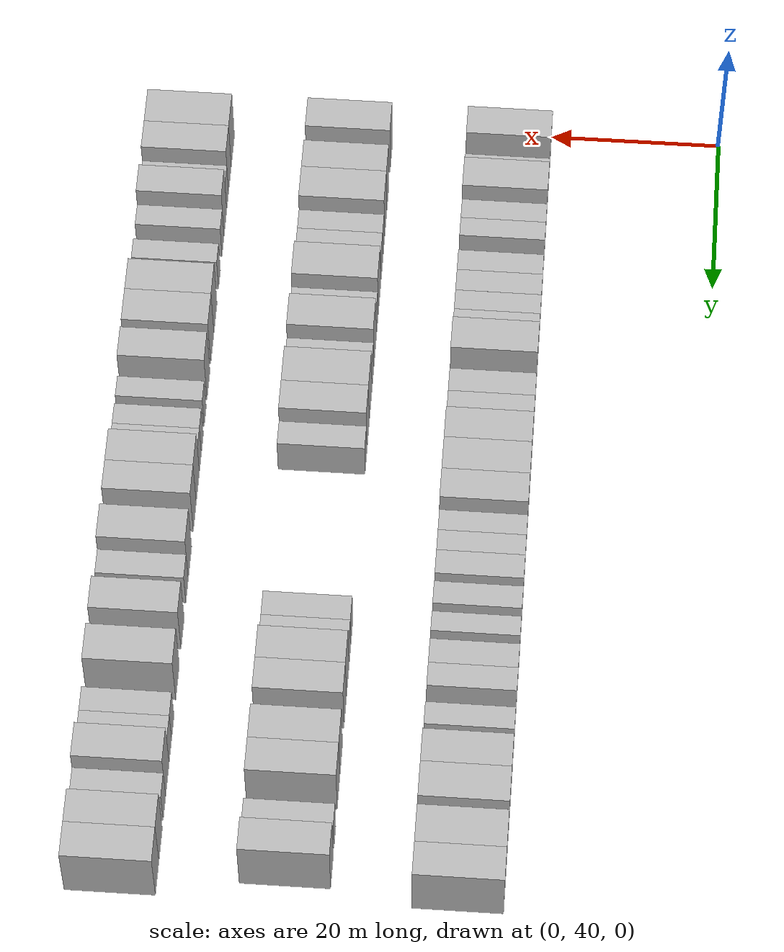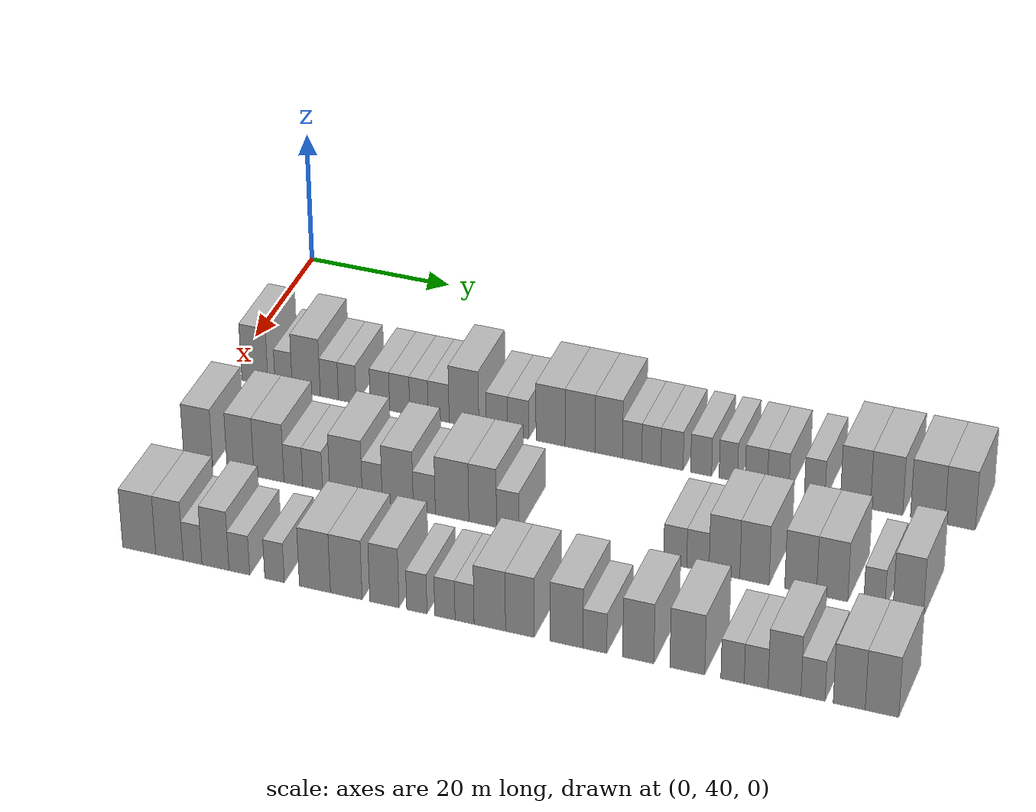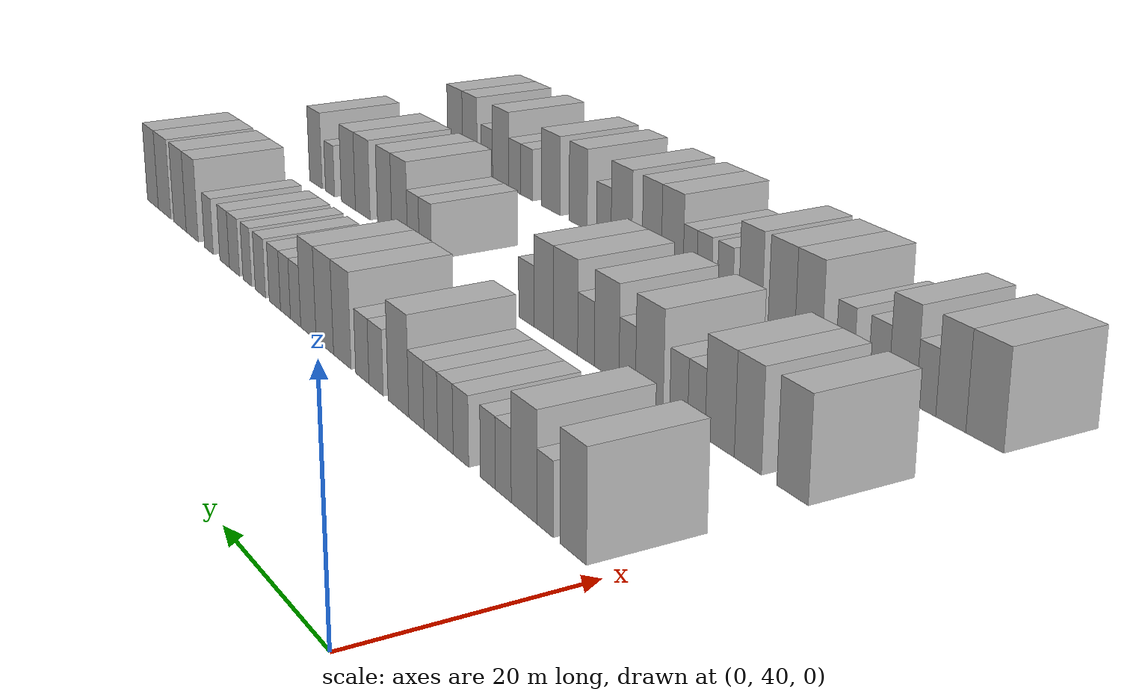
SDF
<sdf version="1.6">
 <world name="default">
  <model name="building_66">
   <static>1</static>
   <pose>25.0000 44.0719 0 0.000000 0.000000 0.000000</pose>
   <link name="link">
    <pose>0 0 4.50 0 0 0</pose>
    <collision name="collision"><geometry><box><size>10.0000 3.7396 9.0000</size></box></geometry></collision>
    <visual name="visual">
     <cast_shadows>0</cast_shadows>
     <geometry><box><size>10.0000 3.7396 9.0000</size></box></geometry>
     <material>
      <script>
       <uri>model://HANNAS_wall/materials/scripts</uri>
       <uri>model://HANNAS_wall/materials/textures</uri>
       <name>vrc/HANNAS_wall</name>
      </script>
     </material>
    </visual>
   </link>
  </model>
  <model name="building_67">
   <static>1</static>
   <pose>25.0000 48.1564 0 0.000000 0.000000 0.000000</pose>
   <link name="link">
    <pose>0 0 3.00 0 0 0</pose>
    <collision name="collision"><geometry><box><size>10.0000 2.4293 6.0000</size></box></geometry></collision>
    <visual name="visual">
     <cast_shadows>0</cast_shadows>
     <geometry><box><size>10.0000 2.4293 6.0000</size></box></geometry>
     <material>
      <script>
       <uri>model://HANNAS_wall/materials/scripts</uri>
       <uri>model://HANNAS_wall/materials/textures</uri>
       <name>vrc/HANNAS_wall</name>
      </script>
     </material>
    </visual>
   </link>
  </model>
  <model name="building_68">
   <static>1</static>
   <pose>25.0000 51.3450 0 0.000000 0.000000 0.000000</pose>
   <link name="link">
    <pose>0 0 4.50 0 0 0</pose>
    <collision name="collision"><geometry><box><size>10.0000 3.9480 9.0000</size></box></geometry></collision>
    <visual name="visual">
     <cast_shadows>0</cast_shadows>
     <geometry><box><size>10.0000 3.9480 9.0000</size></box></geometry>
     <material>
      <script>
       <uri>model://HANNAS_wall/materials/scripts</uri>
       <uri>model://HANNAS_wall/materials/textures</uri>
       <name>vrc/HANNAS_wall</name>
      </script>
     </material>
    </visual>
   </link>
  </model>
  <model name="building_69">
   <static>1</static>
   <pose>25.0000 54.5966 0 0.000000 0.000000 0.000000</pose>
   <link name="link">
    <pose>0 0 3.00 0 0 0</pose>
    <collision name="collision"><geometry><box><size>10.0000 2.5550 6.0000</size></box></geometry></collision>
    <visual name="visual">
     <cast_shadows>0</cast_shadows>
     <geometry><box><size>10.0000 2.5550 6.0000</size></box></geometry>
     <material>
      <script>
       <uri>model://HANNAS_wall/materials/scripts</uri>
       <uri>model://HANNAS_wall/materials/textures</uri>
       <name>vrc/HANNAS_wall</name>
      </script>
     </material>
    </visual>
   </link>
  </model>
  <model name="building_70">
   <static>1</static>
   <pose>25.0000 57.1111 0 0.000000 0.000000 0.000000</pose>
   <link name="link">
    <pose>0 0 3.00 0 0 0</pose>
    <collision name="collision"><geometry><box><size>10.0000 2.4741 6.0000</size></box></geometry></collision>
    <visual name="visual">
     <cast_shadows>0</cast_shadows>
     <geometry><box><size>10.0000 2.4741 6.0000</size></box></geometry>
     <material>
      <script>
       <uri>model://HANNAS_wall/materials/scripts</uri>
       <uri>model://HANNAS_wall/materials/textures</uri>
       <name>vrc/HANNAS_wall</name>
      </script>
     </material>
    </visual>
   </link>
  </model>
  <model name="building_71">
   <static>1</static>
   <pose>25.0000 61.6997 0 0.000000 0.000000 0.000000</pose>
   <link name="link">
    <pose>0 0 3.00 0 0 0</pose>
    <collision name="collision"><geometry><box><size>10.0000 2.7030 6.0000</size></box></geometry></collision>
    <visual name="visual">
     <cast_shadows>0</cast_shadows>
     <geometry><box><size>10.0000 2.7030 6.0000</size></box></geometry>
     <material>
      <script>
       <uri>model://HANNAS_wall/materials/scripts</uri>
       <uri>model://HANNAS_wall/materials/textures</uri>
       <name>vrc/HANNAS_wall</name>
      </script>
     </material>
    </visual>
   </link>
  </model>
  <model name="building_72">
   <static>1</static>
   <pose>25.0000 64.4498 0 0.000000 0.000000 0.000000</pose>
   <link name="link">
    <pose>0 0 3.00 0 0 0</pose>
    <collision name="collision"><geometry><box><size>10.0000 2.7973 6.0000</size></box></geometry></collision>
    <visual name="visual">
     <cast_shadows>0</cast_shadows>
     <geometry><box><size>10.0000 2.7973 6.0000</size></box></geometry>
     <material>
      <script>
       <uri>model://HANNAS_wall/materials/scripts</uri>
       <uri>model://HANNAS_wall/materials/textures</uri>
       <name>vrc/HANNAS_wall</name>
      </script>
     </material>
    </visual>
   </link>
  </model>
  <model name="building_73">
   <static>1</static>
   <pose>25.0000 67.1315 0 0.000000 0.000000 0.000000</pose>
   <link name="link">
    <pose>0 0 3.00 0 0 0</pose>
    <collision name="collision"><geometry><box><size>10.0000 2.5660 6.0000</size></box></geometry></collision>
    <visual name="visual">
     <cast_shadows>0</cast_shadows>
     <geometry><box><size>10.0000 2.5660 6.0000</size></box></geometry>
     <material>
      <script>
       <uri>model://HANNAS_wall/materials/scripts</uri>
       <uri>model://HANNAS_wall/materials/textures</uri>
       <name>vrc/HANNAS_wall</name>
      </script>
     </material>
    </visual>
   </link>
  </model>
  <model name="building_74">
   <static>1</static>
   <pose>25.0000 69.8629 0 0.000000 0.000000 0.000000</pose>
   <link name="link">
    <pose>0 0 3.00 0 0 0</pose>
    <collision name="collision"><geometry><box><size>10.0000 2.8969 6.0000</size></box></geometry></collision>
    <visual name="visual">
     <cast_shadows>0</cast_shadows>
     <geometry><box><size>10.0000 2.8969 6.0000</size></box></geometry>
     <material>
      <script>
       <uri>model://HANNAS_wall/materials/scripts</uri>
       <uri>model://HANNAS_wall/materials/textures</uri>
       <name>vrc/HANNAS_wall</name>
      </script>
     </material>
    </visual>
   </link>
  </model>
  <model name="building_75">
   <static>1</static>
   <pose>25.0000 73.3644 0 0.000000 0.000000 0.000000</pose>
   <link name="link">
    <pose>0 0 4.50 0 0 0</pose>
    <collision name="collision"><geometry><box><size>10.0000 4.1061 9.0000</size></box></geometry></collision>
    <visual name="visual">
     <cast_shadows>0</cast_shadows>
     <geometry><box><size>10.0000 4.1061 9.0000</size></box></geometry>
     <material>
      <script>
       <uri>model://HANNAS_wall/materials/scripts</uri>
       <uri>model://HANNAS_wall/materials/textures</uri>
       <name>vrc/HANNAS_wall</name>
      </script>
     </material>
    </visual>
   </link>
  </model>
  <model name="building_76">
   <static>1</static>
   <pose>25.0000 77.9017 0 0.000000 0.000000 0.000000</pose>
   <link name="link">
    <pose>0 0 3.00 0 0 0</pose>
    <collision name="collision"><geometry><box><size>10.0000 2.9686 6.0000</size></box></geometry></collision>
    <visual name="visual">
     <cast_shadows>0</cast_shadows>
     <geometry><box><size>10.0000 2.9686 6.0000</size></box></geometry>
     <material>
      <script>
       <uri>model://HANNAS_wall/materials/scripts</uri>
       <uri>model://HANNAS_wall/materials/textures</uri>
       <name>vrc/HANNAS_wall</name>
      </script>
     </material>
    </visual>
   </link>
  </model>
  <model name="building_77">
   <static>1</static>
   <pose>25.0000 80.8199 0 0.000000 0.000000 0.000000</pose>
   <link name="link">
    <pose>0 0 3.00 0 0 0</pose>
    <collision name="collision"><geometry><box><size>10.0000 2.8679 6.0000</size></box></geometry></collision>
    <visual name="visual">
     <cast_shadows>0</cast_shadows>
     <geometry><box><size>10.0000 2.8679 6.0000</size></box></geometry>
     <material>
      <script>
       <uri>model://HANNAS_wall/materials/scripts</uri>
       <uri>model://HANNAS_wall/materials/textures</uri>
       <name>vrc/HANNAS_wall</name>
      </script>
     </material>
    </visual>
   </link>
  </model>
  <model name="building_78">
   <static>1</static>
   <pose>25.0000 85.2276 0 0.000000 0.000000 0.000000</pose>
   <link name="link">
    <pose>0 0 4.50 0 0 0</pose>
    <collision name="collision"><geometry><box><size>10.0000 3.9474 9.0000</size></box></geometry></collision>
    <visual name="visual">
     <cast_shadows>0</cast_shadows>
     <geometry><box><size>10.0000 3.9474 9.0000</size></box></geometry>
     <material>
      <script>
       <uri>model://HANNAS_wall/materials/scripts</uri>
       <uri>model://HANNAS_wall/materials/textures</uri>
       <name>vrc/HANNAS_wall</name>
      </script>
     </material>
    </visual>
   </link>
  </model>
  <model name="building_79">
   <static>1</static>
   <pose>25.0000 89.2398 0 0.000000 0.000000 0.000000</pose>
   <link name="link">
    <pose>0 0 4.50 0 0 0</pose>
    <collision name="collision"><geometry><box><size>10.0000 4.0771 9.0000</size></box></geometry></collision>
    <visual name="visual">
     <cast_shadows>0</cast_shadows>
     <geometry><box><size>10.0000 4.0771 9.0000</size></box></geometry>
     <material>
      <script>
       <uri>model://HANNAS_wall/materials/scripts</uri>
       <uri>model://HANNAS_wall/materials/textures</uri>
       <name>vrc/HANNAS_wall</name>
      </script>
     </material>
    </visual>
   </link>
  </model>
  <model name="building_80">
   <static>1</static>
   <pose>25.0000 93.1396 0 0.000000 0.000000 0.000000</pose>
   <link name="link">
    <pose>0 0 4.50 0 0 0</pose>
    <collision name="collision"><geometry><box><size>10.0000 3.7225 9.0000</size></box></geometry></collision>
    <visual name="visual">
     <cast_shadows>0</cast_shadows>
     <geometry><box><size>10.0000 3.7225 9.0000</size></box></geometry>
     <material>
      <script>
       <uri>model://HANNAS_wall/materials/scripts</uri>
       <uri>model://HANNAS_wall/materials/textures</uri>
       <name>vrc/HANNAS_wall</name>
      </script>
     </material>
    </visual>
   </link>
  </model>
  <model name="building_81">
   <static>1</static>
   <pose>25.0000 96.2928 0 0.000000 0.000000 0.000000</pose>
   <link name="link">
    <pose>0 0 3.00 0 0 0</pose>
    <collision name="collision"><geometry><box><size>10.0000 2.5839 6.0000</size></box></geometry></collision>
    <visual name="visual">
     <cast_shadows>0</cast_shadows>
     <geometry><box><size>10.0000 2.5839 6.0000</size></box></geometry>
     <material>
      <script>
       <uri>model://HANNAS_wall/materials/scripts</uri>
       <uri>model://HANNAS_wall/materials/textures</uri>
       <name>vrc/HANNAS_wall</name>
      </script>
     </material>
    </visual>
   </link>
  </model>
  <model name="building_82">
   <static>1</static>
   <pose>25.0000 98.8640 0 0.000000 0.000000 0.000000</pose>
   <link name="link">
    <pose>0 0 3.00 0 0 0</pose>
    <collision name="collision"><geometry><box><size>10.0000 2.5585 6.0000</size></box></geometry></collision>
    <visual name="visual">
     <cast_shadows>0</cast_shadows>
     <geometry><box><size>10.0000 2.5585 6.0000</size></box></geometry>
     <material>
      <script>
       <uri>model://HANNAS_wall/materials/scripts</uri>
       <uri>model://HANNAS_wall/materials/textures</uri>
       <name>vrc/HANNAS_wall</name>
      </script>
     </material>
    </visual>
   </link>
  </model>
  <model name="building_83">
   <static>1</static>
   <pose>25.0000 101.6313 0 0.000000 0.000000 0.000000</pose>
   <link name="link">
    <pose>0 0 3.00 0 0 0</pose>
    <collision name="collision"><geometry><box><size>10.0000 2.9762 6.0000</size></box></geometry></collision>
    <visual name="visual">
     <cast_shadows>0</cast_shadows>
     <geometry><box><size>10.0000 2.9762 6.0000</size></box></geometry>
     <material>
      <script>
       <uri>model://HANNAS_wall/materials/scripts</uri>
       <uri>model://HANNAS_wall/materials/textures</uri>
       <name>vrc/HANNAS_wall</name>
      </script>
     </material>
    </visual>
   </link>
  </model>
  <model name="building_84">
   <static>1</static>
   <pose>25.0000 105.5181 0 0.000000 0.000000 0.000000</pose>
   <link name="link">
    <pose>0 0 3.00 0 0 0</pose>
    <collision name="collision"><geometry><box><size>10.0000 2.7975 6.0000</size></box></geometry></collision>
    <visual name="visual">
     <cast_shadows>0</cast_shadows>
     <geometry><box><size>10.0000 2.7975 6.0000</size></box></geometry>
     <material>
      <script>
       <uri>model://HANNAS_wall/materials/scripts</uri>
       <uri>model://HANNAS_wall/materials/textures</uri>
       <name>vrc/HANNAS_wall</name>
      </script>
     </material>
    </visual>
   </link>
  </model>
  <model name="building_85">
   <static>1</static>
   <pose>25.0000 109.1365 0 0.000000 0.000000 0.000000</pose>
   <link name="link">
    <pose>0 0 3.00 0 0 0</pose>
    <collision name="collision"><geometry><box><size>10.0000 2.4392 6.0000</size></box></geometry></collision>
    <visual name="visual">
     <cast_shadows>0</cast_shadows>
     <geometry><box><size>10.0000 2.4392 6.0000</size></box></geometry>
     <material>
      <script>
       <uri>model://HANNAS_wall/materials/scripts</uri>
       <uri>model://HANNAS_wall/materials/textures</uri>
       <name>vrc/HANNAS_wall</name>
      </script>
     </material>
    </visual>
   </link>
  </model>
  <model name="building_86">
   <static>1</static>
   <pose>25.0000 112.8341 0 0.000000 0.000000 0.000000</pose>
   <link name="link">
    <pose>0 0 3.00 0 0 0</pose>
    <collision name="collision"><geometry><box><size>10.0000 2.9561 6.0000</size></box></geometry></collision>
    <visual name="visual">
     <cast_shadows>0</cast_shadows>
     <geometry><box><size>10.0000 2.9561 6.0000</size></box></geometry>
     <material>
      <script>
       <uri>model://HANNAS_wall/materials/scripts</uri>
       <uri>model://HANNAS_wall/materials/textures</uri>
       <name>vrc/HANNAS_wall</name>
      </script>
     </material>
    </visual>
   </link>
  </model>
  <model name="building_87">
   <static>1</static>
   <pose>25.0000 115.7455 0 0.000000 0.000000 0.000000</pose>
   <link name="link">
    <pose>0 0 3.00 0 0 0</pose>
    <collision name="collision"><geometry><box><size>10.0000 2.8667 6.0000</size></box></geometry></collision>
    <visual name="visual">
     <cast_shadows>0</cast_shadows>
     <geometry><box><size>10.0000 2.8667 6.0000</size></box></geometry>
     <material>
      <script>
       <uri>model://HANNAS_wall/materials/scripts</uri>
       <uri>model://HANNAS_wall/materials/textures</uri>
       <name>vrc/HANNAS_wall</name>
      </script>
     </material>
    </visual>
   </link>
  </model>
  <model name="building_88">
   <static>1</static>
   <pose>25.0000 120.5350 0 0.000000 0.000000 0.000000</pose>
   <link name="link">
    <pose>0 0 3.00 0 0 0</pose>
    <collision name="collision"><geometry><box><size>10.0000 2.7122 6.0000</size></box></geometry></collision>
    <visual name="visual">
     <cast_shadows>0</cast_shadows>
     <geometry><box><size>10.0000 2.7122 6.0000</size></box></geometry>
     <material>
      <script>
       <uri>model://HANNAS_wall/materials/scripts</uri>
       <uri>model://HANNAS_wall/materials/textures</uri>
       <name>vrc/HANNAS_wall</name>
      </script>
     </material>
    </visual>
   </link>
  </model>
  <model name="building_89">
   <static>1</static>
   <pose>25.0000 125.8515 0 0.000000 0.000000 0.000000</pose>
   <link name="link">
    <pose>0 0 4.50 0 0 0</pose>
    <collision name="collision"><geometry><box><size>10.0000 3.9207 9.0000</size></box></geometry></collision>
    <visual name="visual">
     <cast_shadows>0</cast_shadows>
     <geometry><box><size>10.0000 3.9207 9.0000</size></box></geometry>
     <material>
      <script>
       <uri>model://HANNAS_wall/materials/scripts</uri>
       <uri>model://HANNAS_wall/materials/textures</uri>
       <name>vrc/HANNAS_wall</name>
      </script>
     </material>
    </visual>
   </link>
  </model>
  <model name="building_90">
   <static>1</static>
   <pose>25.0000 129.9079 0 0.000000 0.000000 0.000000</pose>
   <link name="link">
    <pose>0 0 4.50 0 0 0</pose>
    <collision name="collision"><geometry><box><size>10.0000 4.1921 9.0000</size></box></geometry></collision>
    <visual name="visual">
     <cast_shadows>0</cast_shadows>
     <geometry><box><size>10.0000 4.1921 9.0000</size></box></geometry>
     <material>
      <script>
       <uri>model://HANNAS_wall/materials/scripts</uri>
       <uri>model://HANNAS_wall/materials/textures</uri>
       <name>vrc/HANNAS_wall</name>
      </script>
     </material>
    </visual>
   </link>
  </model>
  <model name="building_91">
   <static>1</static>
   <pose>25.0000 135.2095 0 0.000000 0.000000 0.000000</pose>
   <link name="link">
    <pose>0 0 4.50 0 0 0</pose>
    <collision name="collision"><geometry><box><size>10.0000 4.4112 9.0000</size></box></geometry></collision>
    <visual name="visual">
     <cast_shadows>0</cast_shadows>
     <geometry><box><size>10.0000 4.4112 9.0000</size></box></geometry>
     <material>
      <script>
       <uri>model://HANNAS_wall/materials/scripts</uri>
       <uri>model://HANNAS_wall/materials/textures</uri>
       <name>vrc/HANNAS_wall</name>
      </script>
     </material>
    </visual>
   </link>
  </model>
  <model name="building_92">
   <static>1</static>
   <pose>25.0000 139.3823 0 0.000000 0.000000 0.000000</pose>
   <link name="link">
    <pose>0 0 4.50 0 0 0</pose>
    <collision name="collision"><geometry><box><size>10.0000 3.9343 9.0000</size></box></geometry></collision>
    <visual name="visual">
     <cast_shadows>0</cast_shadows>
     <geometry><box><size>10.0000 3.9343 9.0000</size></box></geometry>
     <material>
      <script>
       <uri>model://HANNAS_wall/materials/scripts</uri>
       <uri>model://HANNAS_wall/materials/textures</uri>
       <name>vrc/HANNAS_wall</name>
      </script>
     </material>
    </visual>
   </link>
  </model>
  <model name="building_191">
   <static>1</static>
   <pose>44.0000 44.2803 0 0.000000 0.000000 0.000000</pose>
   <link name="link">
    <pose>0 0 4.50 0 0 0</pose>
    <collision name="collision"><geometry><box><size>10.0000 3.9866 9.0000</size></box></geometry></collision>
    <visual name="visual">
     <cast_shadows>0</cast_shadows>
     <geometry><box><size>10.0000 3.9866 9.0000</size></box></geometry>
     <material>
      <script>
       <uri>model://HANNAS_wall/materials/scripts</uri>
       <uri>model://HANNAS_wall/materials/textures</uri>
       <name>vrc/HANNAS_wall</name>
      </script>
     </material>
    </visual>
   </link>
  </model>
  <model name="building_192">
   <static>1</static>
   <pose>44.0000 50.1110 0 0.000000 0.000000 0.000000</pose>
   <link name="link">
    <pose>0 0 4.50 0 0 0</pose>
    <collision name="collision"><geometry><box><size>10.0000 3.6749 9.0000</size></box></geometry></collision>
    <visual name="visual">
     <cast_shadows>0</cast_shadows>
     <geometry><box><size>10.0000 3.6749 9.0000</size></box></geometry>
     <material>
      <script>
       <uri>model://HANNAS_wall/materials/scripts</uri>
       <uri>model://HANNAS_wall/materials/textures</uri>
       <name>vrc/HANNAS_wall</name>
      </script>
     </material>
    </visual>
   </link>
  </model>
  <model name="building_193">
   <static>1</static>
   <pose>44.0000 54.0138 0 0.000000 0.000000 0.000000</pose>
   <link name="link">
    <pose>0 0 4.50 0 0 0</pose>
    <collision name="collision"><geometry><box><size>10.0000 4.1307 9.0000</size></box></geometry></collision>
    <visual name="visual">
     <cast_shadows>0</cast_shadows>
     <geometry><box><size>10.0000 4.1307 9.0000</size></box></geometry>
     <material>
      <script>
       <uri>model://HANNAS_wall/materials/scripts</uri>
       <uri>model://HANNAS_wall/materials/textures</uri>
       <name>vrc/HANNAS_wall</name>
      </script>
     </material>
    </visual>
   </link>
  </model>
  <model name="building_194">
   <static>1</static>
   <pose>44.0000 57.3605 0 0.000000 0.000000 0.000000</pose>
   <link name="link">
    <pose>0 0 3.00 0 0 0</pose>
    <collision name="collision"><geometry><box><size>10.0000 2.5628 6.0000</size></box></geometry></collision>
    <visual name="visual">
     <cast_shadows>0</cast_shadows>
     <geometry><box><size>10.0000 2.5628 6.0000</size></box></geometry>
     <material>
      <script>
       <uri>model://HANNAS_wall/materials/scripts</uri>
       <uri>model://HANNAS_wall/materials/textures</uri>
       <name>vrc/HANNAS_wall</name>
      </script>
     </material>
    </visual>
   </link>
  </model>
  <model name="building_195">
   <static>1</static>
   <pose>44.0000 59.9966 0 0.000000 0.000000 0.000000</pose>
   <link name="link">
    <pose>0 0 3.00 0 0 0</pose>
    <collision name="collision"><geometry><box><size>10.0000 2.7093 6.0000</size></box></geometry></collision>
    <visual name="visual">
     <cast_shadows>0</cast_shadows>
     <geometry><box><size>10.0000 2.7093 6.0000</size></box></geometry>
     <material>
      <script>
       <uri>model://HANNAS_wall/materials/scripts</uri>
       <uri>model://HANNAS_wall/materials/textures</uri>
       <name>vrc/HANNAS_wall</name>
      </script>
     </material>
    </visual>
   </link>
  </model>
  <model name="building_196">
   <static>1</static>
   <pose>44.0000 64.5523 0 0.000000 0.000000 0.000000</pose>
   <link name="link">
    <pose>0 0 4.50 0 0 0</pose>
    <collision name="collision"><geometry><box><size>10.0000 4.4022 9.0000</size></box></geometry></collision>
    <visual name="visual">
     <cast_shadows>0</cast_shadows>
     <geometry><box><size>10.0000 4.4022 9.0000</size></box></geometry>
     <material>
      <script>
       <uri>model://HANNAS_wall/materials/scripts</uri>
       <uri>model://HANNAS_wall/materials/textures</uri>
       <name>vrc/HANNAS_wall</name>
      </script>
     </material>
    </visual>
   </link>
  </model>
  <model name="building_197">
   <static>1</static>
   <pose>44.0000 68.1023 0 0.000000 0.000000 0.000000</pose>
   <link name="link">
    <pose>0 0 3.00 0 0 0</pose>
    <collision name="collision"><geometry><box><size>10.0000 2.6979 6.0000</size></box></geometry></collision>
    <visual name="visual">
     <cast_shadows>0</cast_shadows>
     <geometry><box><size>10.0000 2.6979 6.0000</size></box></geometry>
     <material>
      <script>
       <uri>model://HANNAS_wall/materials/scripts</uri>
       <uri>model://HANNAS_wall/materials/textures</uri>
       <name>vrc/HANNAS_wall</name>
      </script>
     </material>
    </visual>
   </link>
  </model>
  <model name="building_198">
   <static>1</static>
   <pose>44.0000 71.5444 0 0.000000 0.000000 0.000000</pose>
   <link name="link">
    <pose>0 0 4.50 0 0 0</pose>
    <collision name="collision"><geometry><box><size>10.0000 4.1862 9.0000</size></box></geometry></collision>
    <visual name="visual">
     <cast_shadows>0</cast_shadows>
     <geometry><box><size>10.0000 4.1862 9.0000</size></box></geometry>
     <material>
      <script>
       <uri>model://HANNAS_wall/materials/scripts</uri>
       <uri>model://HANNAS_wall/materials/textures</uri>
       <name>vrc/HANNAS_wall</name>
      </script>
     </material>
    </visual>
   </link>
  </model>
  <model name="building_199">
   <static>1</static>
   <pose>44.0000 75.1119 0 0.000000 0.000000 0.000000</pose>
   <link name="link">
    <pose>0 0 3.00 0 0 0</pose>
    <collision name="collision"><geometry><box><size>10.0000 2.9488 6.0000</size></box></geometry></collision>
    <visual name="visual">
     <cast_shadows>0</cast_shadows>
     <geometry><box><size>10.0000 2.9488 6.0000</size></box></geometry>
     <material>
      <script>
       <uri>model://HANNAS_wall/materials/scripts</uri>
       <uri>model://HANNAS_wall/materials/textures</uri>
       <name>vrc/HANNAS_wall</name>
      </script>
     </material>
    </visual>
   </link>
  </model>
  <model name="building_200">
   <static>1</static>
   <pose>44.0000 78.8251 0 0.000000 0.000000 0.000000</pose>
   <link name="link">
    <pose>0 0 4.50 0 0 0</pose>
    <collision name="collision"><geometry><box><size>10.0000 4.4775 9.0000</size></box></geometry></collision>
    <visual name="visual">
     <cast_shadows>0</cast_shadows>
     <geometry><box><size>10.0000 4.4775 9.0000</size></box></geometry>
     <material>
      <script>
       <uri>model://HANNAS_wall/materials/scripts</uri>
       <uri>model://HANNAS_wall/materials/textures</uri>
       <name>vrc/HANNAS_wall</name>
      </script>
     </material>
    </visual>
   </link>
  </model>
  <model name="building_201">
   <static>1</static>
   <pose>44.0000 82.9095 0 0.000000 0.000000 0.000000</pose>
   <link name="link">
    <pose>0 0 4.50 0 0 0</pose>
    <collision name="collision"><geometry><box><size>10.0000 3.6914 9.0000</size></box></geometry></collision>
    <visual name="visual">
     <cast_shadows>0</cast_shadows>
     <geometry><box><size>10.0000 3.6914 9.0000</size></box></geometry>
     <material>
      <script>
       <uri>model://HANNAS_wall/materials/scripts</uri>
       <uri>model://HANNAS_wall/materials/textures</uri>
       <name>vrc/HANNAS_wall</name>
      </script>
     </material>
    </visual>
   </link>
  </model>
  <model name="building_202">
   <static>1</static>
   <pose>44.0000 86.2353 0 0.000000 0.000000 0.000000</pose>
   <link name="link">
    <pose>0 0 3.00 0 0 0</pose>
    <collision name="collision"><geometry><box><size>10.0000 2.9602 6.0000</size></box></geometry></collision>
    <visual name="visual">
     <cast_shadows>0</cast_shadows>
     <geometry><box><size>10.0000 2.9602 6.0000</size></box></geometry>
     <material>
      <script>
       <uri>model://HANNAS_wall/materials/scripts</uri>
       <uri>model://HANNAS_wall/materials/textures</uri>
       <name>vrc/HANNAS_wall</name>
      </script>
     </material>
    </visual>
   </link>
  </model>
  <model name="building_203">
   <static>1</static>
   <pose>44.0000 108.1620 0 0.000000 0.000000 0.000000</pose>
   <link name="link">
    <pose>0 0 3.00 0 0 0</pose>
    <collision name="collision"><geometry><box><size>10.0000 2.9644 6.0000</size></box></geometry></collision>
    <visual name="visual">
     <cast_shadows>0</cast_shadows>
     <geometry><box><size>10.0000 2.9644 6.0000</size></box></geometry>
     <material>
      <script>
       <uri>model://HANNAS_wall/materials/scripts</uri>
       <uri>model://HANNAS_wall/materials/textures</uri>
       <name>vrc/HANNAS_wall</name>
      </script>
     </material>
    </visual>
   </link>
  </model>
  <model name="building_204">
   <static>1</static>
   <pose>44.0000 111.0840 0 0.000000 0.000000 0.000000</pose>
   <link name="link">
    <pose>0 0 3.00 0 0 0</pose>
    <collision name="collision"><geometry><box><size>10.0000 2.8795 6.0000</size></box></geometry></collision>
    <visual name="visual">
     <cast_shadows>0</cast_shadows>
     <geometry><box><size>10.0000 2.8795 6.0000</size></box></geometry>
     <material>
      <script>
       <uri>model://HANNAS_wall/materials/scripts</uri>
       <uri>model://HANNAS_wall/materials/textures</uri>
       <name>vrc/HANNAS_wall</name>
      </script>
     </material>
    </visual>
   </link>
  </model>
  <model name="building_205">
   <static>1</static>
   <pose>44.0000 114.4937 0 0.000000 0.000000 0.000000</pose>
   <link name="link">
    <pose>0 0 4.50 0 0 0</pose>
    <collision name="collision"><geometry><box><size>10.0000 3.9400 9.0000</size></box></geometry></collision>
    <visual name="visual">
     <cast_shadows>0</cast_shadows>
     <geometry><box><size>10.0000 3.9400 9.0000</size></box></geometry>
     <material>
      <script>
       <uri>model://HANNAS_wall/materials/scripts</uri>
       <uri>model://HANNAS_wall/materials/textures</uri>
       <name>vrc/HANNAS_wall</name>
      </script>
     </material>
    </visual>
   </link>
  </model>
  <model name="building_206">
   <static>1</static>
   <pose>44.0000 118.3415 0 0.000000 0.000000 0.000000</pose>
   <link name="link">
    <pose>0 0 4.50 0 0 0</pose>
    <collision name="collision"><geometry><box><size>10.0000 3.7556 9.0000</size></box></geometry></collision>
    <visual name="visual">
     <cast_shadows>0</cast_shadows>
     <geometry><box><size>10.0000 3.7556 9.0000</size></box></geometry>
     <material>
      <script>
       <uri>model://HANNAS_wall/materials/scripts</uri>
       <uri>model://HANNAS_wall/materials/textures</uri>
       <name>vrc/HANNAS_wall</name>
      </script>
     </material>
    </visual>
   </link>
  </model>
  <model name="building_207">
   <static>1</static>
   <pose>44.0000 124.2349 0 0.000000 0.000000 0.000000</pose>
   <link name="link">
    <pose>0 0 4.50 0 0 0</pose>
    <collision name="collision"><geometry><box><size>10.0000 4.0313 9.0000</size></box></geometry></collision>
    <visual name="visual">
     <cast_shadows>0</cast_shadows>
     <geometry><box><size>10.0000 4.0313 9.0000</size></box></geometry>
     <material>
      <script>
       <uri>model://HANNAS_wall/materials/scripts</uri>
       <uri>model://HANNAS_wall/materials/textures</uri>
       <name>vrc/HANNAS_wall</name>
      </script>
     </material>
    </visual>
   </link>
  </model>
  <model name="building_208">
   <static>1</static>
   <pose>44.0000 128.2251 0 0.000000 0.000000 0.000000</pose>
   <link name="link">
    <pose>0 0 4.50 0 0 0</pose>
    <collision name="collision"><geometry><box><size>10.0000 3.9492 9.0000</size></box></geometry></collision>
    <visual name="visual">
     <cast_shadows>0</cast_shadows>
     <geometry><box><size>10.0000 3.9492 9.0000</size></box></geometry>
     <material>
      <script>
       <uri>model://HANNAS_wall/materials/scripts</uri>
       <uri>model://HANNAS_wall/materials/textures</uri>
       <name>vrc/HANNAS_wall</name>
      </script>
     </material>
    </visual>
   </link>
  </model>
  <model name="building_209">
   <static>1</static>
   <pose>44.0000 133.5326 0 0.000000 0.000000 0.000000</pose>
   <link name="link">
    <pose>0 0 3.00 0 0 0</pose>
    <collision name="collision"><geometry><box><size>10.0000 2.6657 6.0000</size></box></geometry></collision>
    <visual name="visual">
     <cast_shadows>0</cast_shadows>
     <geometry><box><size>10.0000 2.6657 6.0000</size></box></geometry>
     <material>
      <script>
       <uri>model://HANNAS_wall/materials/scripts</uri>
       <uri>model://HANNAS_wall/materials/textures</uri>
       <name>vrc/HANNAS_wall</name>
      </script>
     </material>
    </visual>
   </link>
  </model>
  <model name="building_210">
   <static>1</static>
   <pose>44.0000 137.7683 0 0.000000 0.000000 0.000000</pose>
   <link name="link">
    <pose>0 0 4.50 0 0 0</pose>
    <collision name="collision"><geometry><box><size>10.0000 3.8057 9.0000</size></box></geometry></collision>
    <visual name="visual">
     <cast_shadows>0</cast_shadows>
     <geometry><box><size>10.0000 3.8057 9.0000</size></box></geometry>
     <material>
      <script>
       <uri>model://HANNAS_wall/materials/scripts</uri>
       <uri>model://HANNAS_wall/materials/textures</uri>
       <name>vrc/HANNAS_wall</name>
      </script>
     </material>
    </visual>
   </link>
  </model>
  <model name="building_308">
   <static>1</static>
   <pose>63.0000 44.6062 0 0.000000 0.000000 0.000000</pose>
   <link name="link">
    <pose>0 0 4.50 0 0 0</pose>
    <collision name="collision"><geometry><box><size>10.0000 4.4687 9.0000</size></box></geometry></collision>
    <visual name="visual">
     <cast_shadows>0</cast_shadows>
     <geometry><box><size>10.0000 4.4687 9.0000</size></box></geometry>
     <material>
      <script>
       <uri>model://HANNAS_wall/materials/scripts</uri>
       <uri>model://HANNAS_wall/materials/textures</uri>
       <name>vrc/HANNAS_wall</name>
      </script>
     </material>
    </visual>
   </link>
  </model>
  <model name="building_309">
   <static>1</static>
   <pose>63.0000 48.6860 0 0.000000 0.000000 0.000000</pose>
   <link name="link">
    <pose>0 0 4.50 0 0 0</pose>
    <collision name="collision"><geometry><box><size>10.0000 3.6907 9.0000</size></box></geometry></collision>
    <visual name="visual">
     <cast_shadows>0</cast_shadows>
     <geometry><box><size>10.0000 3.6907 9.0000</size></box></geometry>
     <material>
      <script>
       <uri>model://HANNAS_wall/materials/scripts</uri>
       <uri>model://HANNAS_wall/materials/textures</uri>
       <name>vrc/HANNAS_wall</name>
      </script>
     </material>
    </visual>
   </link>
  </model>
  <model name="building_310">
   <static>1</static>
   <pose>63.0000 51.7860 0 0.000000 0.000000 0.000000</pose>
   <link name="link">
    <pose>0 0 3.00 0 0 0</pose>
    <collision name="collision"><geometry><box><size>10.0000 2.5093 6.0000</size></box></geometry></collision>
    <visual name="visual">
     <cast_shadows>0</cast_shadows>
     <geometry><box><size>10.0000 2.5093 6.0000</size></box></geometry>
     <material>
      <script>
       <uri>model://HANNAS_wall/materials/scripts</uri>
       <uri>model://HANNAS_wall/materials/textures</uri>
       <name>vrc/HANNAS_wall</name>
      </script>
     </material>
    </visual>
   </link>
  </model>
  <model name="building_311">
   <static>1</static>
   <pose>63.0000 54.8516 0 0.000000 0.000000 0.000000</pose>
   <link name="link">
    <pose>0 0 4.50 0 0 0</pose>
    <collision name="collision"><geometry><box><size>10.0000 3.6220 9.0000</size></box></geometry></collision>
    <visual name="visual">
     <cast_shadows>0</cast_shadows>
     <geometry><box><size>10.0000 3.6220 9.0000</size></box></geometry>
     <material>
      <script>
       <uri>model://HANNAS_wall/materials/scripts</uri>
       <uri>model://HANNAS_wall/materials/textures</uri>
       <name>vrc/HANNAS_wall</name>
      </script>
     </material>
    </visual>
   </link>
  </model>
  <model name="building_312">
   <static>1</static>
   <pose>63.0000 58.0429 0 0.000000 0.000000 0.000000</pose>
   <link name="link">
    <pose>0 0 3.00 0 0 0</pose>
    <collision name="collision"><geometry><box><size>10.0000 2.7606 6.0000</size></box></geometry></collision>
    <visual name="visual">
     <cast_shadows>0</cast_shadows>
     <geometry><box><size>10.0000 2.7606 6.0000</size></box></geometry>
     <material>
      <script>
       <uri>model://HANNAS_wall/materials/scripts</uri>
       <uri>model://HANNAS_wall/materials/textures</uri>
       <name>vrc/HANNAS_wall</name>
      </script>
     </material>
    </visual>
   </link>
  </model>
  <model name="building_313">
   <static>1</static>
   <pose>63.0000 62.7181 0 0.000000 0.000000 0.000000</pose>
   <link name="link">
    <pose>0 0 3.00 0 0 0</pose>
    <collision name="collision"><geometry><box><size>10.0000 2.5897 6.0000</size></box></geometry></collision>
    <visual name="visual">
     <cast_shadows>0</cast_shadows>
     <geometry><box><size>10.0000 2.5897 6.0000</size></box></geometry>
     <material>
      <script>
       <uri>model://HANNAS_wall/materials/scripts</uri>
       <uri>model://HANNAS_wall/materials/textures</uri>
       <name>vrc/HANNAS_wall</name>
      </script>
     </material>
    </visual>
   </link>
  </model>
  <model name="building_314">
   <static>1</static>
   <pose>63.0000 68.0534 0 0.000000 0.000000 0.000000</pose>
   <link name="link">
    <pose>0 0 4.50 0 0 0</pose>
    <collision name="collision"><geometry><box><size>10.0000 4.0810 9.0000</size></box></geometry></collision>
    <visual name="visual">
     <cast_shadows>0</cast_shadows>
     <geometry><box><size>10.0000 4.0810 9.0000</size></box></geometry>
     <material>
      <script>
       <uri>model://HANNAS_wall/materials/scripts</uri>
       <uri>model://HANNAS_wall/materials/textures</uri>
       <name>vrc/HANNAS_wall</name>
      </script>
     </material>
    </visual>
   </link>
  </model>
  <model name="building_315">
   <static>1</static>
   <pose>63.0000 72.1777 0 0.000000 0.000000 0.000000</pose>
   <link name="link">
    <pose>0 0 4.50 0 0 0</pose>
    <collision name="collision"><geometry><box><size>10.0000 4.1677 9.0000</size></box></geometry></collision>
    <visual name="visual">
     <cast_shadows>0</cast_shadows>
     <geometry><box><size>10.0000 4.1677 9.0000</size></box></geometry>
     <material>
      <script>
       <uri>model://HANNAS_wall/materials/scripts</uri>
       <uri>model://HANNAS_wall/materials/textures</uri>
       <name>vrc/HANNAS_wall</name>
      </script>
     </material>
    </visual>
   </link>
  </model>
  <model name="building_316">
   <static>1</static>
   <pose>63.0000 77.1645 0 0.000000 0.000000 0.000000</pose>
   <link name="link">
    <pose>0 0 4.50 0 0 0</pose>
    <collision name="collision"><geometry><box><size>10.0000 3.8059 9.0000</size></box></geometry></collision>
    <visual name="visual">
     <cast_shadows>0</cast_shadows>
     <geometry><box><size>10.0000 3.8059 9.0000</size></box></geometry>
     <material>
      <script>
       <uri>model://HANNAS_wall/materials/scripts</uri>
       <uri>model://HANNAS_wall/materials/textures</uri>
       <name>vrc/HANNAS_wall</name>
      </script>
     </material>
    </visual>
   </link>
  </model>
  <model name="building_317">
   <static>1</static>
   <pose>63.0000 81.3829 0 0.000000 0.000000 0.000000</pose>
   <link name="link">
    <pose>0 0 3.00 0 0 0</pose>
    <collision name="collision"><geometry><box><size>10.0000 2.6308 6.0000</size></box></geometry></collision>
    <visual name="visual">
     <cast_shadows>0</cast_shadows>
     <geometry><box><size>10.0000 2.6308 6.0000</size></box></geometry>
     <material>
      <script>
       <uri>model://HANNAS_wall/materials/scripts</uri>
       <uri>model://HANNAS_wall/materials/textures</uri>
       <name>vrc/HANNAS_wall</name>
      </script>
     </material>
    </visual>
   </link>
  </model>
  <model name="building_318">
   <static>1</static>
   <pose>63.0000 85.0084 0 0.000000 0.000000 0.000000</pose>
   <link name="link">
    <pose>0 0 3.00 0 0 0</pose>
    <collision name="collision"><geometry><box><size>10.0000 2.6202 6.0000</size></box></geometry></collision>
    <visual name="visual">
     <cast_shadows>0</cast_shadows>
     <geometry><box><size>10.0000 2.6202 6.0000</size></box></geometry>
     <material>
      <script>
       <uri>model://HANNAS_wall/materials/scripts</uri>
       <uri>model://HANNAS_wall/materials/textures</uri>
       <name>vrc/HANNAS_wall</name>
      </script>
     </material>
    </visual>
   </link>
  </model>
  <model name="building_319">
   <static>1</static>
   <pose>63.0000 87.5429 0 0.000000 0.000000 0.000000</pose>
   <link name="link">
    <pose>0 0 3.00 0 0 0</pose>
    <collision name="collision"><geometry><box><size>10.0000 2.4489 6.0000</size></box></geometry></collision>
    <visual name="visual">
     <cast_shadows>0</cast_shadows>
     <geometry><box><size>10.0000 2.4489 6.0000</size></box></geometry>
     <material>
      <script>
       <uri>model://HANNAS_wall/materials/scripts</uri>
       <uri>model://HANNAS_wall/materials/textures</uri>
       <name>vrc/HANNAS_wall</name>
      </script>
     </material>
    </visual>
   </link>
  </model>
  <model name="building_320">
   <static>1</static>
   <pose>63.0000 90.7867 0 0.000000 0.000000 0.000000</pose>
   <link name="link">
    <pose>0 0 4.50 0 0 0</pose>
    <collision name="collision"><geometry><box><size>10.0000 4.0386 9.0000</size></box></geometry></collision>
    <visual name="visual">
     <cast_shadows>0</cast_shadows>
     <geometry><box><size>10.0000 4.0386 9.0000</size></box></geometry>
     <material>
      <script>
       <uri>model://HANNAS_wall/materials/scripts</uri>
       <uri>model://HANNAS_wall/materials/textures</uri>
       <name>vrc/HANNAS_wall</name>
      </script>
     </material>
    </visual>
   </link>
  </model>
  <model name="building_321">
   <static>1</static>
   <pose>63.0000 94.6453 0 0.000000 0.000000 0.000000</pose>
   <link name="link">
    <pose>0 0 4.50 0 0 0</pose>
    <collision name="collision"><geometry><box><size>10.0000 3.6787 9.0000</size></box></geometry></collision>
    <visual name="visual">
     <cast_shadows>0</cast_shadows>
     <geometry><box><size>10.0000 3.6787 9.0000</size></box></geometry>
     <material>
      <script>
       <uri>model://HANNAS_wall/materials/scripts</uri>
       <uri>model://HANNAS_wall/materials/textures</uri>
       <name>vrc/HANNAS_wall</name>
      </script>
     </material>
    </visual>
   </link>
  </model>
  <model name="building_322">
   <static>1</static>
   <pose>63.0000 100.5856 0 0.000000 0.000000 0.000000</pose>
   <link name="link">
    <pose>0 0 4.50 0 0 0</pose>
    <collision name="collision"><geometry><box><size>10.0000 4.2019 9.0000</size></box></geometry></collision>
    <visual name="visual">
     <cast_shadows>0</cast_shadows>
     <geometry><box><size>10.0000 4.2019 9.0000</size></box></geometry>
     <material>
      <script>
       <uri>model://HANNAS_wall/materials/scripts</uri>
       <uri>model://HANNAS_wall/materials/textures</uri>
       <name>vrc/HANNAS_wall</name>
      </script>
     </material>
    </visual>
   </link>
  </model>
  <model name="building_323">
   <static>1</static>
   <pose>63.0000 104.1834 0 0.000000 0.000000 0.000000</pose>
   <link name="link">
    <pose>0 0 3.00 0 0 0</pose>
    <collision name="collision"><geometry><box><size>10.0000 2.9939 6.0000</size></box></geometry></collision>
    <visual name="visual">
     <cast_shadows>0</cast_shadows>
     <geometry><box><size>10.0000 2.9939 6.0000</size></box></geometry>
     <material>
      <script>
       <uri>model://HANNAS_wall/materials/scripts</uri>
       <uri>model://HANNAS_wall/materials/textures</uri>
       <name>vrc/HANNAS_wall</name>
      </script>
     </material>
    </visual>
   </link>
  </model>
  <model name="building_324">
   <static>1</static>
   <pose>63.0000 109.6389 0 0.000000 0.000000 0.000000</pose>
   <link name="link">
    <pose>0 0 4.50 0 0 0</pose>
    <collision name="collision"><geometry><box><size>10.0000 3.9169 9.0000</size></box></geometry></collision>
    <visual name="visual">
     <cast_shadows>0</cast_shadows>
     <geometry><box><size>10.0000 3.9169 9.0000</size></box></geometry>
     <material>
      <script>
       <uri>model://HANNAS_wall/materials/scripts</uri>
       <uri>model://HANNAS_wall/materials/textures</uri>
       <name>vrc/HANNAS_wall</name>
      </script>
     </material>
    </visual>
   </link>
  </model>
  <model name="building_325">
   <static>1</static>
   <pose>63.0000 115.7662 0 0.000000 0.000000 0.000000</pose>
   <link name="link">
    <pose>0 0 4.50 0 0 0</pose>
    <collision name="collision"><geometry><box><size>10.0000 4.3378 9.0000</size></box></geometry></collision>
    <visual name="visual">
     <cast_shadows>0</cast_shadows>
     <geometry><box><size>10.0000 4.3378 9.0000</size></box></geometry>
     <material>
      <script>
       <uri>model://HANNAS_wall/materials/scripts</uri>
       <uri>model://HANNAS_wall/materials/textures</uri>
       <name>vrc/HANNAS_wall</name>
      </script>
     </material>
    </visual>
   </link>
  </model>
  <model name="building_326">
   <static>1</static>
   <pose>63.0000 121.3775 0 0.000000 0.000000 0.000000</pose>
   <link name="link">
    <pose>0 0 3.00 0 0 0</pose>
    <collision name="collision"><geometry><box><size>10.0000 2.8847 6.0000</size></box></geometry></collision>
    <visual name="visual">
     <cast_shadows>0</cast_shadows>
     <geometry><box><size>10.0000 2.8847 6.0000</size></box></geometry>
     <material>
      <script>
       <uri>model://HANNAS_wall/materials/scripts</uri>
       <uri>model://HANNAS_wall/materials/textures</uri>
       <name>vrc/HANNAS_wall</name>
      </script>
     </material>
    </visual>
   </link>
  </model>
  <model name="building_327">
   <static>1</static>
   <pose>63.0000 124.2950 0 0.000000 0.000000 0.000000</pose>
   <link name="link">
    <pose>0 0 3.00 0 0 0</pose>
    <collision name="collision"><geometry><box><size>10.0000 2.9503 6.0000</size></box></geometry></collision>
    <visual name="visual">
     <cast_shadows>0</cast_shadows>
     <geometry><box><size>10.0000 2.9503 6.0000</size></box></geometry>
     <material>
      <script>
       <uri>model://HANNAS_wall/materials/scripts</uri>
       <uri>model://HANNAS_wall/materials/textures</uri>
       <name>vrc/HANNAS_wall</name>
      </script>
     </material>
    </visual>
   </link>
  </model>
  <model name="building_328">
   <static>1</static>
   <pose>63.0000 127.7905 0 0.000000 0.000000 0.000000</pose>
   <link name="link">
    <pose>0 0 4.50 0 0 0</pose>
    <collision name="collision"><geometry><box><size>10.0000 4.0407 9.0000</size></box></geometry></collision>
    <visual name="visual">
     <cast_shadows>0</cast_shadows>
     <geometry><box><size>10.0000 4.0407 9.0000</size></box></geometry>
     <material>
      <script>
       <uri>model://HANNAS_wall/materials/scripts</uri>
       <uri>model://HANNAS_wall/materials/textures</uri>
       <name>vrc/HANNAS_wall</name>
      </script>
     </material>
    </visual>
   </link>
  </model>
  <model name="building_329">
   <static>1</static>
   <pose>63.0000 131.2881 0 0.000000 0.000000 0.000000</pose>
   <link name="link">
    <pose>0 0 3.00 0 0 0</pose>
    <collision name="collision"><geometry><box><size>10.0000 2.9544 6.0000</size></box></geometry></collision>
    <visual name="visual">
     <cast_shadows>0</cast_shadows>
     <geometry><box><size>10.0000 2.9544 6.0000</size></box></geometry>
     <material>
      <script>
       <uri>model://HANNAS_wall/materials/scripts</uri>
       <uri>model://HANNAS_wall/materials/textures</uri>
       <name>vrc/HANNAS_wall</name>
      </script>
     </material>
    </visual>
   </link>
  </model>
  <model name="building_330">
   <static>1</static>
   <pose>63.0000 135.7101 0 0.000000 0.000000 0.000000</pose>
   <link name="link">
    <pose>0 0 4.50 0 0 0</pose>
    <collision name="collision"><geometry><box><size>10.0000 3.8897 9.0000</size></box></geometry></collision>
    <visual name="visual">
     <cast_shadows>0</cast_shadows>
     <geometry><box><size>10.0000 3.8897 9.0000</size></box></geometry>
     <material>
      <script>
       <uri>model://HANNAS_wall/materials/scripts</uri>
       <uri>model://HANNAS_wall/materials/textures</uri>
       <name>vrc/HANNAS_wall</name>
      </script>
     </material>
    </visual>
   </link>
  </model>
  <model name="building_331">
   <static>1</static>
   <pose>63.0000 139.6892 0 0.000000 0.000000 0.000000</pose>
   <link name="link">
    <pose>0 0 4.50 0 0 0</pose>
    <collision name="collision"><geometry><box><size>10.0000 4.0686 9.0000</size></box></geometry></collision>
    <visual name="visual">
     <cast_shadows>0</cast_shadows>
     <geometry><box><size>10.0000 4.0686 9.0000</size></box></geometry>
     <material>
      <script>
       <uri>model://HANNAS_wall/materials/scripts</uri>
       <uri>model://HANNAS_wall/materials/textures</uri>
       <name>vrc/HANNAS_wall</name>
      </script>
     </material>
    </visual>
   </link>
  </model>
 </world>
</sdf>
